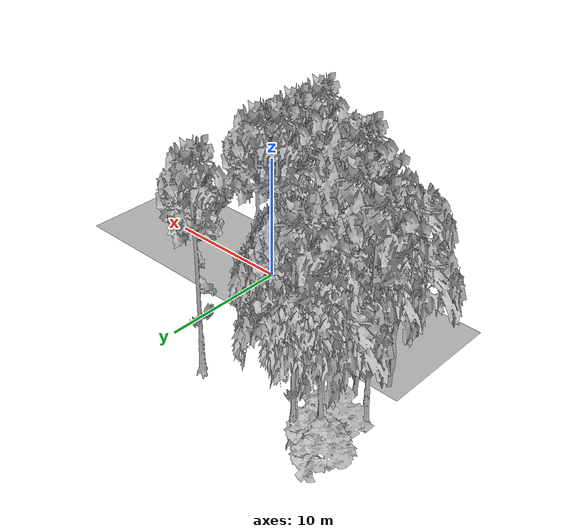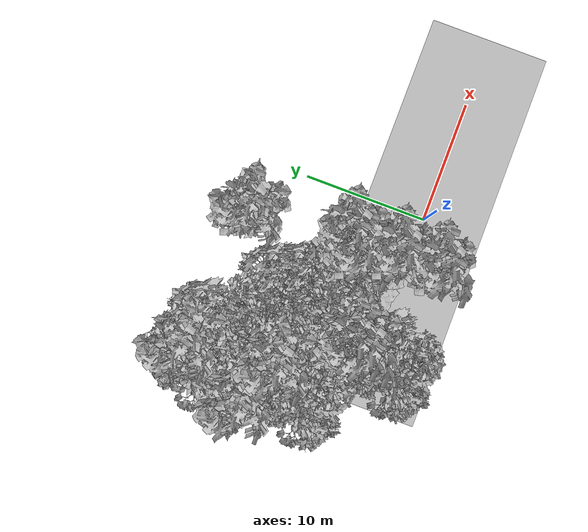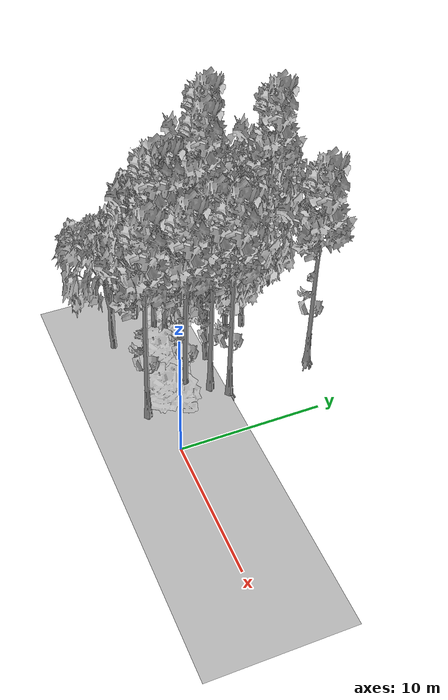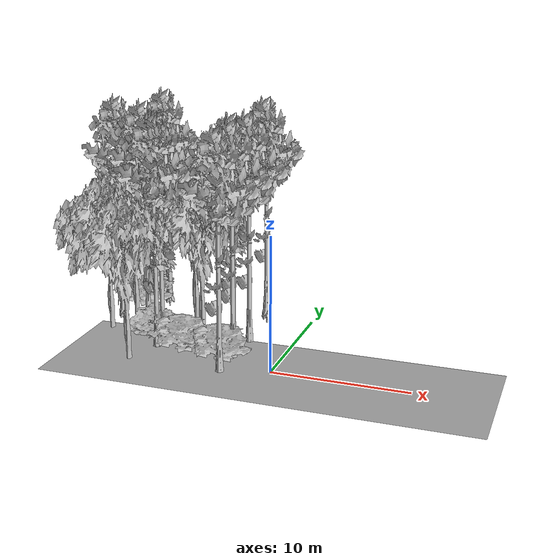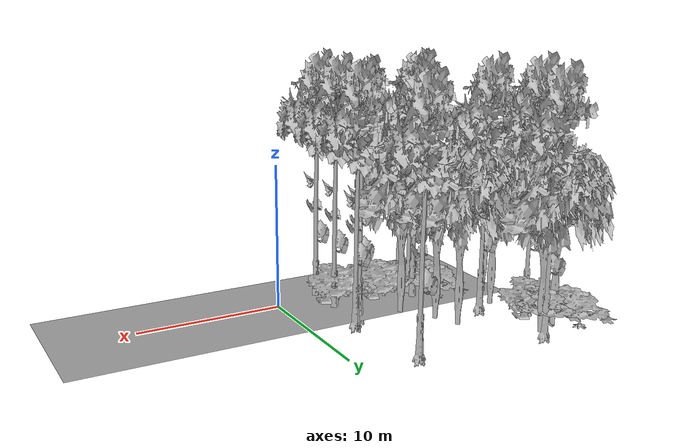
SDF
<sdf version="1.7">
 <world name="default">
  <model name="ground_plane">
   <static>1</static>
   <link name="link">
    <collision name="collision">
     <pose>-50 0 0 0 -0 0</pose>
     <geometry><plane><normal>0 0 1</normal><size>100 100</size></plane></geometry>
     <surface><contact><ode><min_depth>0.01</min_depth><max_vel>0</max_vel></ode></contact></surface>
    </collision>
    <visual name="grass">
     <cast_shadows>0</cast_shadows>
     <geometry>
      <mesh>
       <scale>0.5814285714285714 0.18142857142857144 0.1</scale>
       <uri>file://grass_plane/meshes/grass_plane.dae</uri>
      </mesh>
     </geometry>
    </visual>
   </link>
  </model>
  <model name="Tree 0">
   <static>1</static>
   <pose>-9.497331103599258 1.7377793644193638 0 1.57079 -0 0</pose>
   <link name="link">
    <collision name="collision">
     <geometry><mesh><scale>3.5 5 3.5</scale><uri>model://tree_9/meshes/tree_9.obj</uri></mesh></geometry>
    </collision>
    <visual name="visual">
     <geometry><mesh><scale>3.5 5 3.5</scale><uri>model://tree_9/meshes/tree_9.obj</uri></mesh></geometry>
    </visual>
   </link>
  </model>
  <model name="Tree 32">
   <static>1</static>
   <pose>-14.664122695703682 11.285026428368614 0 1.57079 -0 0</pose>
   <link name="link">
    <collision name="collision">
     <geometry><mesh><scale>3.5 5 3.5</scale><uri>model://tree_2/meshes/tree_2.obj</uri></mesh></geometry>
    </collision>
    <visual name="visual">
     <geometry><mesh><scale>3.5 5 3.5</scale><uri>model://tree_2/meshes/tree_2.obj</uri></mesh></geometry>
    </visual>
   </link>
  </model>
  <model name="Tree 33">
   <static>1</static>
   <pose>-14.378093770031185 11.09797481008357 0 1.57079 -0 0</pose>
   <link name="link">
    <collision name="collision">
     <geometry><mesh><scale>4 2.5 4</scale><uri>model://tree_1/meshes/tree_1.obj</uri></mesh></geometry>
    </collision>
    <visual name="visual">
     <geometry><mesh><scale>4 2.5 4</scale><uri>model://tree_1/meshes/tree_1.obj</uri></mesh></geometry>
    </visual>
   </link>
  </model>
  <model name="Tree 40">
   <static>1</static>
   <pose>-8.50479910655664 6.722008664823875 0 1.57079 -0 0</pose>
   <link name="link">
    <collision name="collision">
     <geometry><mesh><scale>3.5 5 3.5</scale><uri>model://tree_2/meshes/tree_2.obj</uri></mesh></geometry>
    </collision>
    <visual name="visual">
     <geometry><mesh><scale>3.5 5 3.5</scale><uri>model://tree_2/meshes/tree_2.obj</uri></mesh></geometry>
    </visual>
   </link>
  </model>
  <model name="Tree 62">
   <static>1</static>
   <pose>-4.201006692350269 11.191984248366413 0 1.57079 -0 0</pose>
   <link name="link">
    <collision name="collision">
     <geometry><mesh><scale>3.5 5 3.5</scale><uri>model://tree_9/meshes/tree_9.obj</uri></mesh></geometry>
    </collision>
    <visual name="visual">
     <geometry><mesh><scale>3.5 5 3.5</scale><uri>model://tree_9/meshes/tree_9.obj</uri></mesh></geometry>
    </visual>
   </link>
  </model>
  <model name="Tree 66">
   <static>1</static>
   <pose>-13.206713249784272 12.125868164935806 0 1.57079 -0 0</pose>
   <link name="link">
    <collision name="collision">
     <geometry><mesh><scale>3.5 5 3.5</scale><uri>model://tree_9/meshes/tree_9.obj</uri></mesh></geometry>
    </collision>
    <visual name="visual">
     <geometry><mesh><scale>3.5 5 3.5</scale><uri>model://tree_9/meshes/tree_9.obj</uri></mesh></geometry>
    </visual>
   </link>
  </model>
  <model name="Tree 74">
   <static>1</static>
   <pose>-13.436709036604256 6.265429311939727 0 1.57079 -0 0</pose>
   <link name="link">
    <collision name="collision">
     <geometry><mesh><scale>3.5 5 3.5</scale><uri>model://tree_2/meshes/tree_2.obj</uri></mesh></geometry>
    </collision>
    <visual name="visual">
     <geometry><mesh><scale>3.5 5 3.5</scale><uri>model://tree_2/meshes/tree_2.obj</uri></mesh></geometry>
    </visual>
   </link>
  </model>
  <model name="Tree 91">
   <static>1</static>
   <pose>-12.400790913337978 6.341492975651281 0 1.57079 -0 0</pose>
   <link name="link">
    <collision name="collision">
     <geometry><mesh><scale>3.5 5 3.5</scale><uri>model://tree_9/meshes/tree_9.obj</uri></mesh></geometry>
    </collision>
    <visual name="visual">
     <geometry><mesh><scale>3.5 5 3.5</scale><uri>model://tree_9/meshes/tree_9.obj</uri></mesh></geometry>
    </visual>
   </link>
  </model>
  <model name="Tree 92">
   <static>1</static>
   <pose>-9.369894469279913 2.4951010414381614 0 1.57079 -0 0</pose>
   <link name="link">
    <collision name="collision">
     <geometry><mesh><scale>3.5 5 3.5</scale><uri>model://tree_9/meshes/tree_9.obj</uri></mesh></geometry>
    </collision>
    <visual name="visual">
     <geometry><mesh><scale>3.5 5 3.5</scale><uri>model://tree_9/meshes/tree_9.obj</uri></mesh></geometry>
    </visual>
   </link>
  </model>
  <model name="Tree 149">
   <static>1</static>
   <pose>-10.926921291211968 3.5386517918177454 0 1.57079 -0 0</pose>
   <link name="link">
    <collision name="collision">
     <geometry><mesh><scale>4 2.5 4</scale><uri>model://tree_1/meshes/tree_1.obj</uri></mesh></geometry>
    </collision>
    <visual name="visual">
     <geometry><mesh><scale>4 2.5 4</scale><uri>model://tree_1/meshes/tree_1.obj</uri></mesh></geometry>
    </visual>
   </link>
  </model>
  <model name="Tree 152">
   <static>1</static>
   <pose>-4.3000255972768215 0.7047453983362235 0 1.57079 -0 0</pose>
   <link name="link">
    <collision name="collision">
     <geometry><mesh><scale>3 2 3</scale><uri>model://tree_3/meshes/tree_3.obj</uri></mesh></geometry>
    </collision>
    <visual name="visual">
     <geometry><mesh><scale>3 2 3</scale><uri>model://tree_3/meshes/tree_3.obj</uri></mesh></geometry>
    </visual>
   </link>
  </model>
  <model name="Tree 208">
   <static>1</static>
   <pose>-15.944394562027234 12.378902097835152 0 1.57079 -0 0</pose>
   <link name="link">
    <collision name="collision">
     <geometry><mesh><scale>4 2.5 4</scale><uri>model://tree_1/meshes/tree_1.obj</uri></mesh></geometry>
    </collision>
    <visual name="visual">
     <geometry><mesh><scale>4 2.5 4</scale><uri>model://tree_1/meshes/tree_1.obj</uri></mesh></geometry>
    </visual>
   </link>
  </model>
  <model name="Tree 222">
   <static>1</static>
   <pose>-9.210491303008908 8.296988181242682 0 1.57079 -0 0</pose>
   <link name="link">
    <collision name="collision">
     <geometry><mesh><scale>3.5 5 3.5</scale><uri>model://tree_2/meshes/tree_2.obj</uri></mesh></geometry>
    </collision>
    <visual name="visual">
     <geometry><mesh><scale>3.5 5 3.5</scale><uri>model://tree_2/meshes/tree_2.obj</uri></mesh></geometry>
    </visual>
   </link>
  </model>
  <model name="Tree 234">
   <static>1</static>
   <pose>-7.60886108476236 1.4975912789937134 0 1.57079 -0 0</pose>
   <link name="link">
    <collision name="collision">
     <geometry><mesh><scale>3 2 3</scale><uri>model://tree_3/meshes/tree_3.obj</uri></mesh></geometry>
    </collision>
    <visual name="visual">
     <geometry><mesh><scale>3 2 3</scale><uri>model://tree_3/meshes/tree_3.obj</uri></mesh></geometry>
    </visual>
   </link>
  </model>
  <model name="Tree 241">
   <static>1</static>
   <pose>-4.234445941014634 3.838109348705654 0 1.57079 -0 0</pose>
   <link name="link">
    <collision name="collision">
     <geometry><mesh><scale>3.5 5 3.5</scale><uri>model://tree_9/meshes/tree_9.obj</uri></mesh></geometry>
    </collision>
    <visual name="visual">
     <geometry><mesh><scale>3.5 5 3.5</scale><uri>model://tree_9/meshes/tree_9.obj</uri></mesh></geometry>
    </visual>
   </link>
  </model>
  <model name="Tree 245">
   <static>1</static>
   <pose>-3.468796461383718 1.7302978472494637 0 1.57079 -0 0</pose>
   <link name="link">
    <collision name="collision">
     <geometry><mesh><scale>3.5 5 3.5</scale><uri>model://tree_9/meshes/tree_9.obj</uri></mesh></geometry>
    </collision>
    <visual name="visual">
     <geometry><mesh><scale>3.5 5 3.5</scale><uri>model://tree_9/meshes/tree_9.obj</uri></mesh></geometry>
    </visual>
   </link>
  </model>
  <model name="Tree 247">
   <static>1</static>
   <pose>-14.348475735056006 9.314899784005355 0 1.57079 -0 0</pose>
   <link name="link">
    <collision name="collision">
     <geometry><mesh><scale>3 2 3</scale><uri>model://tree_3/meshes/tree_3.obj</uri></mesh></geometry>
    </collision>
    <visual name="visual">
     <geometry><mesh><scale>3 2 3</scale><uri>model://tree_3/meshes/tree_3.obj</uri></mesh></geometry>
    </visual>
   </link>
  </model>
  <model name="Tree 254">
   <static>1</static>
   <pose>-15.308013795905559 7.721697298905166 0 1.57079 -0 0</pose>
   <link name="link">
    <collision name="collision">
     <geometry><mesh><scale>3.5 5 3.5</scale><uri>model://tree_9/meshes/tree_9.obj</uri></mesh></geometry>
    </collision>
    <visual name="visual">
     <geometry><mesh><scale>3.5 5 3.5</scale><uri>model://tree_9/meshes/tree_9.obj</uri></mesh></geometry>
    </visual>
   </link>
  </model>
  <model name="Tree 261">
   <static>1</static>
   <pose>-3.35693045121738 4.8732013556990665 0 1.57079 -0 0</pose>
   <link name="link">
    <collision name="collision">
     <geometry><mesh><scale>3.5 5 3.5</scale><uri>model://tree_9/meshes/tree_9.obj</uri></mesh></geometry>
    </collision>
    <visual name="visual">
     <geometry><mesh><scale>3.5 5 3.5</scale><uri>model://tree_9/meshes/tree_9.obj</uri></mesh></geometry>
    </visual>
   </link>
  </model>
  <model name="Tree 266">
   <static>1</static>
   <pose>-14.481328805347331 4.005135376817169 0 1.57079 -0 0</pose>
   <link name="link">
    <collision name="collision">
     <geometry><mesh><scale>3.5 5 3.5</scale><uri>model://tree_2/meshes/tree_2.obj</uri></mesh></geometry>
    </collision>
    <visual name="visual">
     <geometry><mesh><scale>3.5 5 3.5</scale><uri>model://tree_2/meshes/tree_2.obj</uri></mesh></geometry>
    </visual>
   </link>
  </model>
  <model name="Tree 268">
   <static>1</static>
   <pose>-3.4471019114746184 -0.9781039296315459 0 1.57079 -0 0</pose>
   <link name="link">
    <collision name="collision">
     <geometry><mesh><scale>3.5 5 3.5</scale><uri>model://tree_9/meshes/tree_9.obj</uri></mesh></geometry>
    </collision>
    <visual name="visual">
     <geometry><mesh><scale>3.5 5 3.5</scale><uri>model://tree_9/meshes/tree_9.obj</uri></mesh></geometry>
    </visual>
   </link>
  </model>
  <model name="Tree 269">
   <static>1</static>
   <pose>-7.104550221664205 4.6233795380117435 0 1.57079 -0 0</pose>
   <link name="link">
    <collision name="collision">
     <geometry><mesh><scale>3.5 5 3.5</scale><uri>model://tree_2/meshes/tree_2.obj</uri></mesh></geometry>
    </collision>
    <visual name="visual">
     <geometry><mesh><scale>3.5 5 3.5</scale><uri>model://tree_2/meshes/tree_2.obj</uri></mesh></geometry>
    </visual>
   </link>
  </model>
  <model name="Tree 272">
   <static>1</static>
   <pose>-10.585518029857731 -1.0043626614042225 0 1.57079 -0 0</pose>
   <link name="link">
    <collision name="collision">
     <geometry><mesh><scale>3.5 5 3.5</scale><uri>model://tree_2/meshes/tree_2.obj</uri></mesh></geometry>
    </collision>
    <visual name="visual">
     <geometry><mesh><scale>3.5 5 3.5</scale><uri>model://tree_2/meshes/tree_2.obj</uri></mesh></geometry>
    </visual>
   </link>
  </model>
  <model name="Tree 282">
   <static>1</static>
   <pose>-13.14225012496869 11.864380162545967 0 1.57079 -0 0</pose>
   <link name="link">
    <collision name="collision">
     <geometry><mesh><scale>3.5 5 3.5</scale><uri>model://tree_2/meshes/tree_2.obj</uri></mesh></geometry>
    </collision>
    <visual name="visual">
     <geometry><mesh><scale>3.5 5 3.5</scale><uri>model://tree_2/meshes/tree_2.obj</uri></mesh></geometry>
    </visual>
   </link>
  </model>
  <model name="Bush 1">
   <static>1</static>
   <pose>-16.278647016425452 10.9045671367696 0 1.57079 -0 0</pose>
   <link name="link">
    <collision name="collision">
     <geometry><mesh><scale>2 2 2</scale><uri>model://bush_4/meshes/bush_4.obj</uri></mesh></geometry>
     <surface><contact><collide_without_contact>false</collide_without_contact></contact></surface>
    </collision>
    <visual name="visual">
     <geometry><mesh><scale>2 2 2</scale><uri>model://bush_4/meshes/bush_4.obj</uri></mesh></geometry>
    </visual>
   </link>
  </model>
 </world>
</sdf>
